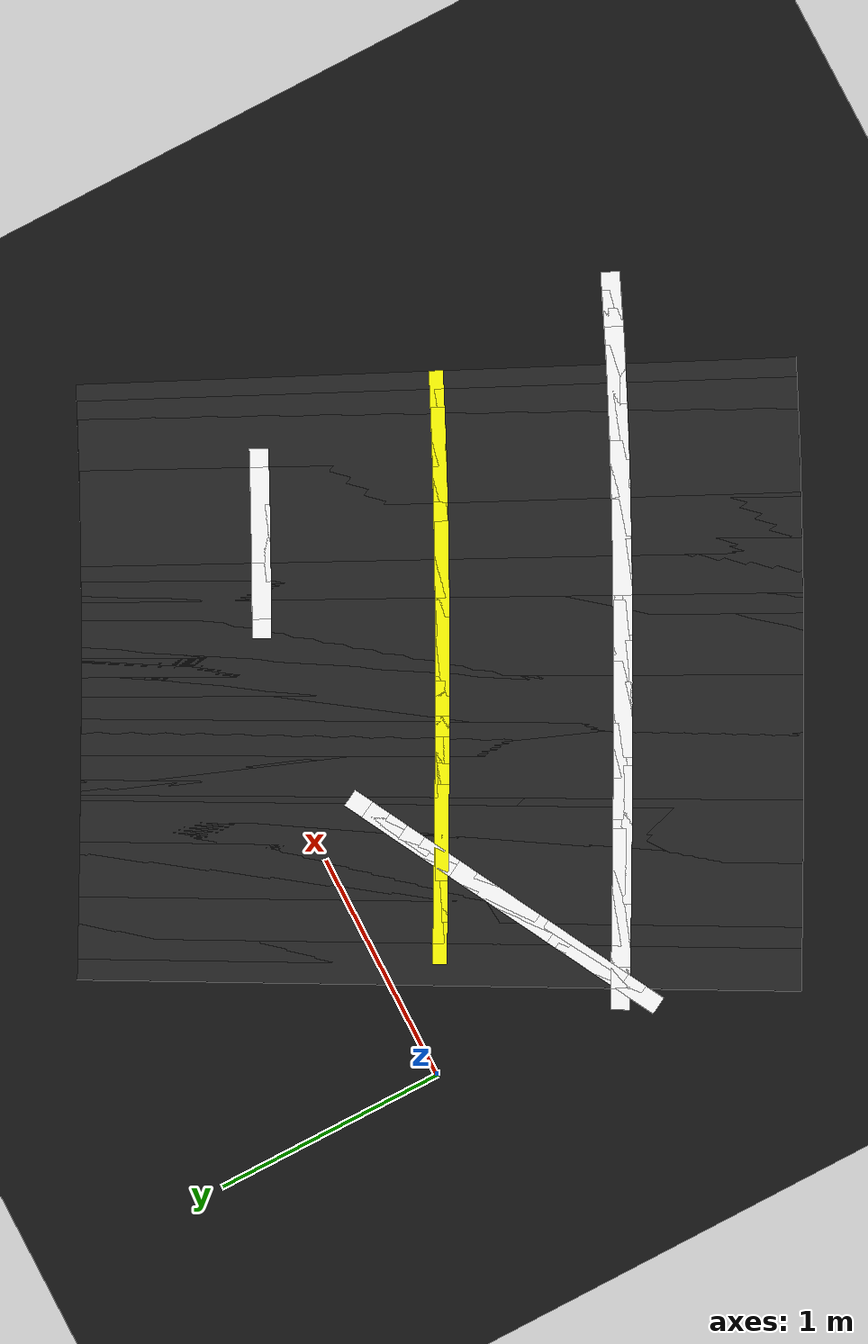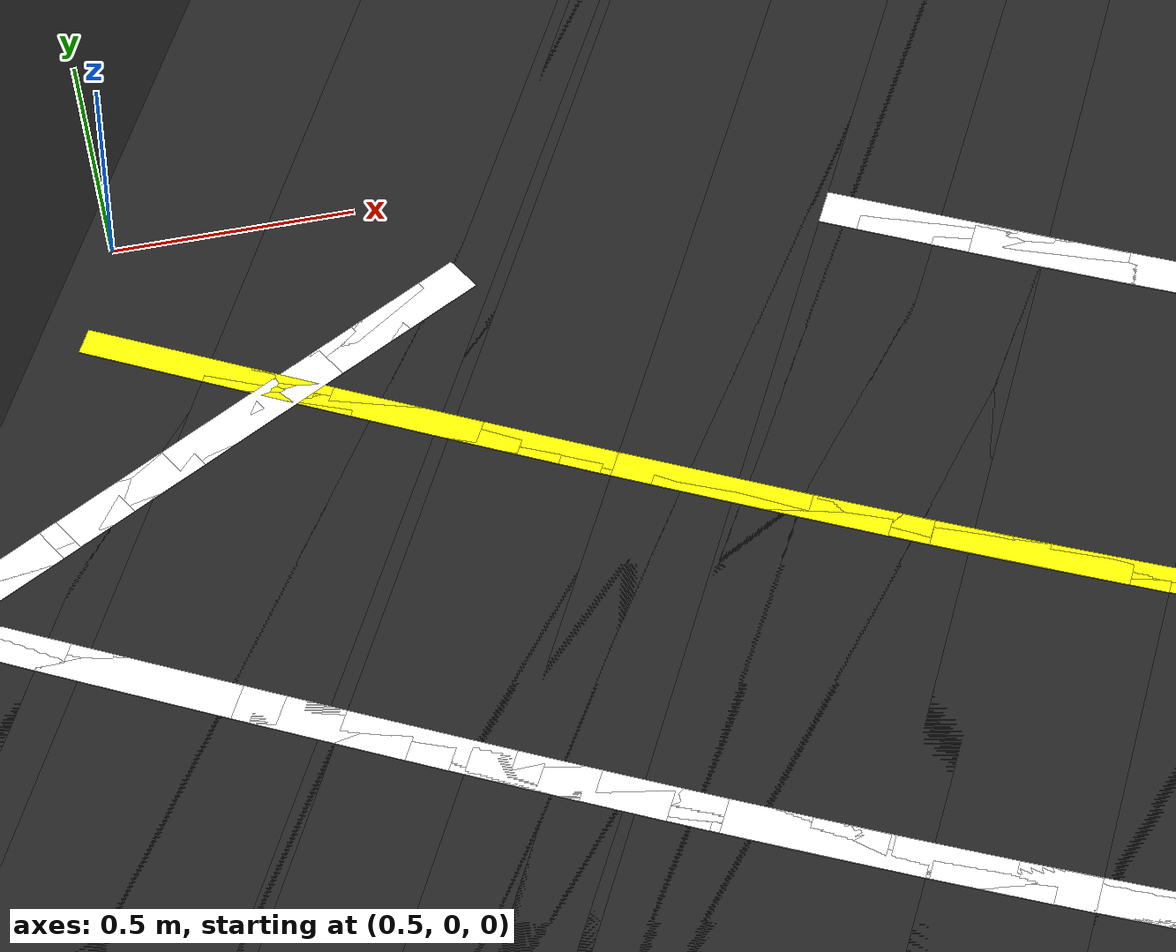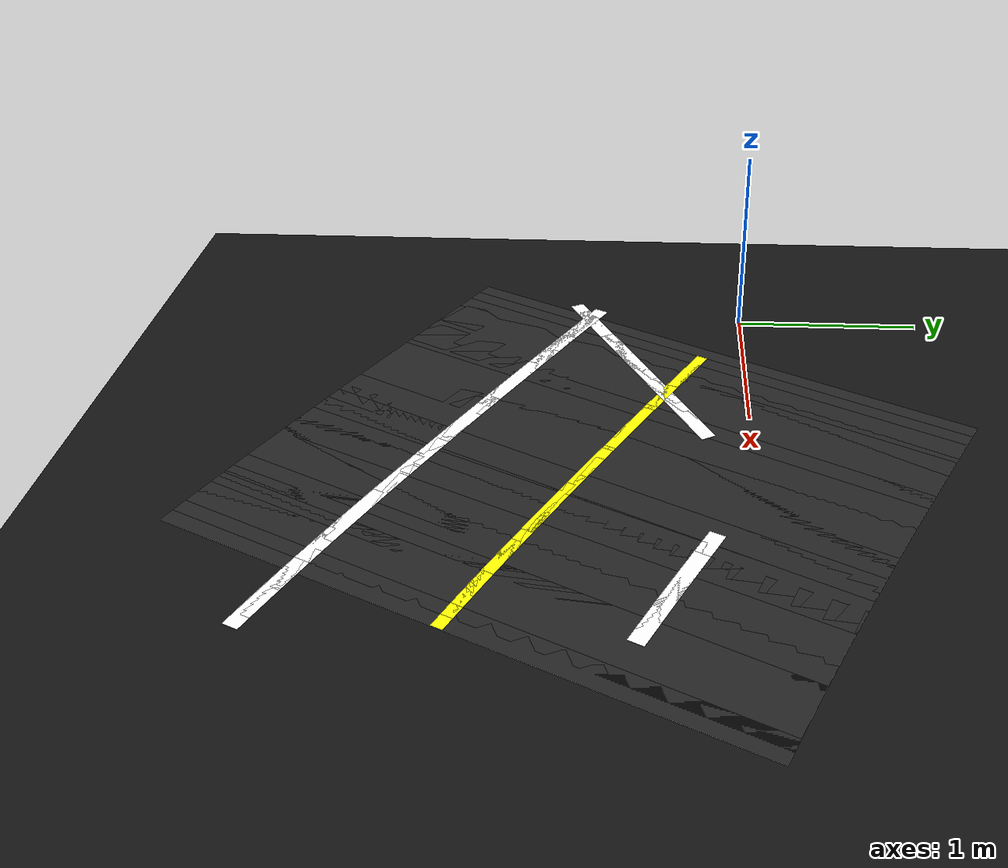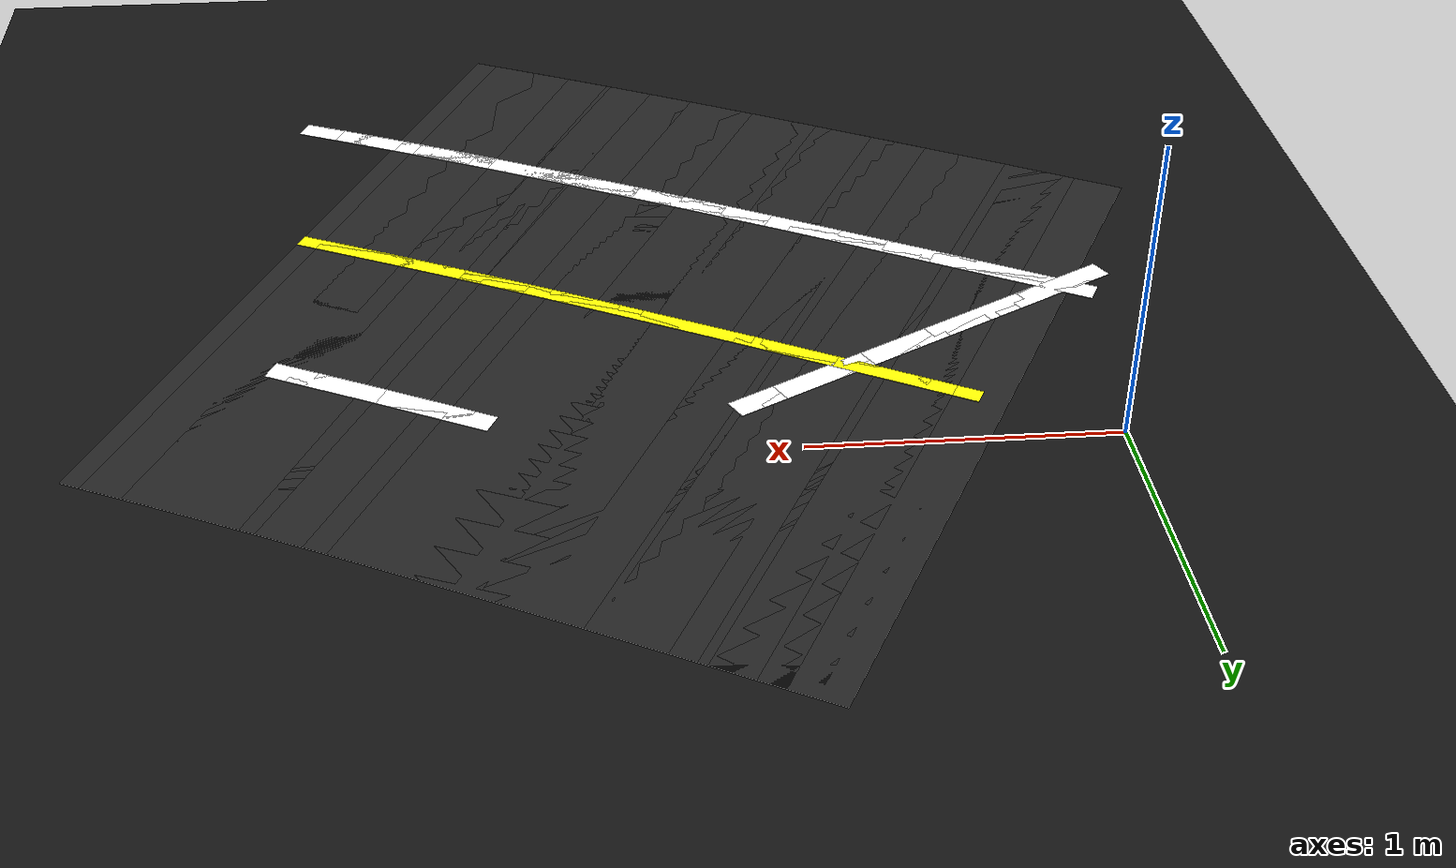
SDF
<sdf version="1.6">
 <world name="figure8_world">
  <model name="ground_plane">
   <static>true</static>
   <link name="link">
    <collision name="collision">
     <geometry><plane><normal>0 0 1</normal><size>120 120</size></plane></geometry>
    </collision>
    <visual name="visual">
     <geometry><plane><normal>0 0 1</normal><size>120 120</size></plane></geometry>
     <material><ambient>0.08 0.08 0.08 1</ambient><diffuse>0.08 0.08 0.08 1</diffuse></material>
    </visual>
   </link>
  </model>
  <model name="seg_01710">
   <static>true</static>
   <pose>0.0686 -0.8906 0.0030 0 0 -0.4966</pose>
   <link name="link">
    <collision name="collision"><geometry><box><size>0.4000 0.0800 0.002</size></box></geometry></collision>
    <visual name="visual">
     <geometry><box><size>0.4000 0.0800 0.002</size></box></geometry>
     <material><ambient>1 1 1 1</ambient><diffuse>1 1 1 1</diffuse></material>
    </visual>
   </link>
  </model>
  <model name="seg_01712">
   <static>true</static>
   <pose>0.5032 -0.2730 0.0010 0 0 -0.4961</pose>
   <link name="link">
    <collision name="collision"><geometry><box><size>0.4000 3.0000 0.002</size></box></geometry></collision>
    <visual name="visual">
     <geometry><box><size>0.4000 3.0000 0.002</size></box></geometry>
     <material><ambient>0.14 0.14 0.14 1</ambient><diffuse>0.14 0.14 0.14 1</diffuse></material>
    </visual>
   </link>
  </model>
  <model name="seg_01714">
   <static>true</static>
   <pose>0.1461 -0.9326 0.0030 0 0 -0.4961</pose>
   <link name="link">
    <collision name="collision"><geometry><box><size>0.4000 0.0800 0.002</size></box></geometry></collision>
    <visual name="visual">
     <geometry><box><size>0.4000 0.0800 0.002</size></box></geometry>
     <material><ambient>1 1 1 1</ambient><diffuse>1 1 1 1</diffuse></material>
    </visual>
   </link>
  </model>
  <model name="seg_01716">
   <static>true</static>
   <pose>0.5803 -0.3147 0.0010 0 0 -0.4955</pose>
   <link name="link">
    <collision name="collision"><geometry><box><size>0.4000 3.0000 0.002</size></box></geometry></collision>
    <visual name="visual">
     <geometry><box><size>0.4000 3.0000 0.002</size></box></geometry>
     <material><ambient>0.14 0.14 0.14 1</ambient><diffuse>0.14 0.14 0.14 1</diffuse></material>
    </visual>
   </link>
  </model>
  <model name="seg_01718">
   <static>true</static>
   <pose>0.2237 -0.9745 0.0030 0 0 -0.4955</pose>
   <link name="link">
    <collision name="collision"><geometry><box><size>0.4000 0.0800 0.002</size></box></geometry></collision>
    <visual name="visual">
     <geometry><box><size>0.4000 0.0800 0.002</size></box></geometry>
     <material><ambient>1 1 1 1</ambient><diffuse>1 1 1 1</diffuse></material>
    </visual>
   </link>
  </model>
  <model name="seg_01719">
   <static>true</static>
   <pose>0.5803 -0.3147 0.0030 0 0 -0.4955</pose>
   <link name="link">
    <collision name="collision"><geometry><box><size>0.4000 0.0600 0.002</size></box></geometry></collision>
    <visual name="visual">
     <geometry><box><size>0.4000 0.0600 0.002</size></box></geometry>
     <material><ambient>1 1 0 1</ambient><diffuse>1 1 0 1</diffuse></material>
    </visual>
   </link>
  </model>
  <model name="seg_01720">
   <static>true</static>
   <pose>0.6572 -0.3562 0.0010 0 0 -0.4948</pose>
   <link name="link">
    <collision name="collision"><geometry><box><size>0.4000 3.0000 0.002</size></box></geometry></collision>
    <visual name="visual">
     <geometry><box><size>0.4000 3.0000 0.002</size></box></geometry>
     <material><ambient>0.14 0.14 0.14 1</ambient><diffuse>0.14 0.14 0.14 1</diffuse></material>
    </visual>
   </link>
  </model>
  <model name="seg_01722">
   <static>true</static>
   <pose>0.3011 -1.0163 0.0030 0 0 -0.4948</pose>
   <link name="link">
    <collision name="collision"><geometry><box><size>0.4000 0.0800 0.002</size></box></geometry></collision>
    <visual name="visual">
     <geometry><box><size>0.4000 0.0800 0.002</size></box></geometry>
     <material><ambient>1 1 1 1</ambient><diffuse>1 1 1 1</diffuse></material>
    </visual>
   </link>
  </model>
  <model name="seg_01723">
   <static>true</static>
   <pose>0.6572 -0.3562 0.0030 0 0 -0.4948</pose>
   <link name="link">
    <collision name="collision"><geometry><box><size>0.4000 0.0600 0.002</size></box></geometry></collision>
    <visual name="visual">
     <geometry><box><size>0.4000 0.0600 0.002</size></box></geometry>
     <material><ambient>1 1 0 1</ambient><diffuse>1 1 0 1</diffuse></material>
    </visual>
   </link>
  </model>
  <model name="seg_01724">
   <static>true</static>
   <pose>0.7341 -0.3976 0.0010 0 0 -0.4940</pose>
   <link name="link">
    <collision name="collision"><geometry><box><size>0.4000 3.0000 0.002</size></box></geometry></collision>
    <visual name="visual">
     <geometry><box><size>0.4000 3.0000 0.002</size></box></geometry>
     <material><ambient>0.14 0.14 0.14 1</ambient><diffuse>0.14 0.14 0.14 1</diffuse></material>
    </visual>
   </link>
  </model>
  <model name="seg_01726">
   <static>true</static>
   <pose>0.3785 -1.0580 0.0030 0 0 -0.4940</pose>
   <link name="link">
    <collision name="collision"><geometry><box><size>0.4000 0.0800 0.002</size></box></geometry></collision>
    <visual name="visual">
     <geometry><box><size>0.4000 0.0800 0.002</size></box></geometry>
     <material><ambient>1 1 1 1</ambient><diffuse>1 1 1 1</diffuse></material>
    </visual>
   </link>
  </model>
  <model name="seg_01727">
   <static>true</static>
   <pose>0.7341 -0.3976 0.0030 0 0 -0.4940</pose>
   <link name="link">
    <collision name="collision"><geometry><box><size>0.4000 0.0600 0.002</size></box></geometry></collision>
    <visual name="visual">
     <geometry><box><size>0.4000 0.0600 0.002</size></box></geometry>
     <material><ambient>1 1 0 1</ambient><diffuse>1 1 0 1</diffuse></material>
    </visual>
   </link>
  </model>
  <model name="seg_01728">
   <static>true</static>
   <pose>0.8108 -0.4388 0.0010 0 0 -0.4930</pose>
   <link name="link">
    <collision name="collision"><geometry><box><size>0.4000 3.0000 0.002</size></box></geometry></collision>
    <visual name="visual">
     <geometry><box><size>0.4000 3.0000 0.002</size></box></geometry>
     <material><ambient>0.14 0.14 0.14 1</ambient><diffuse>0.14 0.14 0.14 1</diffuse></material>
    </visual>
   </link>
  </model>
  <model name="seg_01730">
   <static>true</static>
   <pose>0.4558 -1.0995 0.0030 0 0 -0.4930</pose>
   <link name="link">
    <collision name="collision"><geometry><box><size>0.4000 0.0800 0.002</size></box></geometry></collision>
    <visual name="visual">
     <geometry><box><size>0.4000 0.0800 0.002</size></box></geometry>
     <material><ambient>1 1 1 1</ambient><diffuse>1 1 1 1</diffuse></material>
    </visual>
   </link>
  </model>
  <model name="seg_01731">
   <static>true</static>
   <pose>0.8108 -0.4388 0.0030 0 0 -0.4930</pose>
   <link name="link">
    <collision name="collision"><geometry><box><size>0.4000 0.0600 0.002</size></box></geometry></collision>
    <visual name="visual">
     <geometry><box><size>0.4000 0.0600 0.002</size></box></geometry>
     <material><ambient>1 1 0 1</ambient><diffuse>1 1 0 1</diffuse></material>
    </visual>
   </link>
  </model>
  <model name="seg_01732">
   <static>true</static>
   <pose>0.8873 -0.4798 0.0010 0 0 -0.4920</pose>
   <link name="link">
    <collision name="collision"><geometry><box><size>0.4000 3.0000 0.002</size></box></geometry></collision>
    <visual name="visual">
     <geometry><box><size>0.4000 3.0000 0.002</size></box></geometry>
     <material><ambient>0.14 0.14 0.14 1</ambient><diffuse>0.14 0.14 0.14 1</diffuse></material>
    </visual>
   </link>
  </model>
  <model name="seg_01734">
   <static>true</static>
   <pose>0.5330 -1.1408 0.0030 0 0 -0.4920</pose>
   <link name="link">
    <collision name="collision"><geometry><box><size>0.4000 0.0800 0.002</size></box></geometry></collision>
    <visual name="visual">
     <geometry><box><size>0.4000 0.0800 0.002</size></box></geometry>
     <material><ambient>1 1 1 1</ambient><diffuse>1 1 1 1</diffuse></material>
    </visual>
   </link>
  </model>
  <model name="seg_01735">
   <static>true</static>
   <pose>0.8873 -0.4798 0.0030 0 0 -0.4920</pose>
   <link name="link">
    <collision name="collision"><geometry><box><size>0.4000 0.0600 0.002</size></box></geometry></collision>
    <visual name="visual">
     <geometry><box><size>0.4000 0.0600 0.002</size></box></geometry>
     <material><ambient>1 1 0 1</ambient><diffuse>1 1 0 1</diffuse></material>
    </visual>
   </link>
  </model>
  <model name="seg_01736">
   <static>true</static>
   <pose>0.9636 -0.5206 0.0010 0 0 -0.4909</pose>
   <link name="link">
    <collision name="collision"><geometry><box><size>0.4000 3.0000 0.002</size></box></geometry></collision>
    <visual name="visual">
     <geometry><box><size>0.4000 3.0000 0.002</size></box></geometry>
     <material><ambient>0.14 0.14 0.14 1</ambient><diffuse>0.14 0.14 0.14 1</diffuse></material>
    </visual>
   </link>
  </model>
  <model name="seg_01738">
   <static>true</static>
   <pose>0.6100 -1.1820 0.0030 0 0 -0.4909</pose>
   <link name="link">
    <collision name="collision"><geometry><box><size>0.4000 0.0800 0.002</size></box></geometry></collision>
    <visual name="visual">
     <geometry><box><size>0.4000 0.0800 0.002</size></box></geometry>
     <material><ambient>1 1 1 1</ambient><diffuse>1 1 1 1</diffuse></material>
    </visual>
   </link>
  </model>
  <model name="seg_01739">
   <static>true</static>
   <pose>0.9636 -0.5206 0.0030 0 0 -0.4909</pose>
   <link name="link">
    <collision name="collision"><geometry><box><size>0.4000 0.0600 0.002</size></box></geometry></collision>
    <visual name="visual">
     <geometry><box><size>0.4000 0.0600 0.002</size></box></geometry>
     <material><ambient>1 1 0 1</ambient><diffuse>1 1 0 1</diffuse></material>
    </visual>
   </link>
  </model>
  <model name="seg_01740">
   <static>true</static>
   <pose>1.0396 -0.5611 0.0010 0 0 -0.4897</pose>
   <link name="link">
    <collision name="collision"><geometry><box><size>0.4000 3.0000 0.002</size></box></geometry></collision>
    <visual name="visual">
     <geometry><box><size>0.4000 3.0000 0.002</size></box></geometry>
     <material><ambient>0.14 0.14 0.14 1</ambient><diffuse>0.14 0.14 0.14 1</diffuse></material>
    </visual>
   </link>
  </model>
  <model name="seg_01742">
   <static>true</static>
   <pose>0.6869 -1.2230 0.0030 0 0 -0.4897</pose>
   <link name="link">
    <collision name="collision"><geometry><box><size>0.4000 0.0800 0.002</size></box></geometry></collision>
    <visual name="visual">
     <geometry><box><size>0.4000 0.0800 0.002</size></box></geometry>
     <material><ambient>1 1 1 1</ambient><diffuse>1 1 1 1</diffuse></material>
    </visual>
   </link>
  </model>
  <model name="seg_01743">
   <static>true</static>
   <pose>1.0396 -0.5611 0.0030 0 0 -0.4897</pose>
   <link name="link">
    <collision name="collision"><geometry><box><size>0.4000 0.0600 0.002</size></box></geometry></collision>
    <visual name="visual">
     <geometry><box><size>0.4000 0.0600 0.002</size></box></geometry>
     <material><ambient>1 1 0 1</ambient><diffuse>1 1 0 1</diffuse></material>
    </visual>
   </link>
  </model>
  <model name="seg_01744">
   <static>true</static>
   <pose>1.1155 -0.6014 0.0010 0 0 -0.4883</pose>
   <link name="link">
    <collision name="collision"><geometry><box><size>0.4000 3.0000 0.002</size></box></geometry></collision>
    <visual name="visual">
     <geometry><box><size>0.4000 3.0000 0.002</size></box></geometry>
     <material><ambient>0.14 0.14 0.14 1</ambient><diffuse>0.14 0.14 0.14 1</diffuse></material>
    </visual>
   </link>
  </model>
  <model name="seg_01746">
   <static>true</static>
   <pose>0.7636 -1.2638 0.0030 0 0 -0.4883</pose>
   <link name="link">
    <collision name="collision"><geometry><box><size>0.4000 0.0800 0.002</size></box></geometry></collision>
    <visual name="visual">
     <geometry><box><size>0.4000 0.0800 0.002</size></box></geometry>
     <material><ambient>1 1 1 1</ambient><diffuse>1 1 1 1</diffuse></material>
    </visual>
   </link>
  </model>
  <model name="seg_01747">
   <static>true</static>
   <pose>1.1155 -0.6014 0.0030 0 0 -0.4883</pose>
   <link name="link">
    <collision name="collision"><geometry><box><size>0.4000 0.0600 0.002</size></box></geometry></collision>
    <visual name="visual">
     <geometry><box><size>0.4000 0.0600 0.002</size></box></geometry>
     <material><ambient>1 1 0 1</ambient><diffuse>1 1 0 1</diffuse></material>
    </visual>
   </link>
  </model>
  <model name="seg_01748">
   <static>true</static>
   <pose>1.1911 -0.6415 0.0010 0 0 -0.4869</pose>
   <link name="link">
    <collision name="collision"><geometry><box><size>0.4000 3.0000 0.002</size></box></geometry></collision>
    <visual name="visual">
     <geometry><box><size>0.4000 3.0000 0.002</size></box></geometry>
     <material><ambient>0.14 0.14 0.14 1</ambient><diffuse>0.14 0.14 0.14 1</diffuse></material>
    </visual>
   </link>
  </model>
  <model name="seg_01750">
   <static>true</static>
   <pose>0.8402 -1.3043 0.0030 0 0 -0.4869</pose>
   <link name="link">
    <collision name="collision"><geometry><box><size>0.4000 0.0800 0.002</size></box></geometry></collision>
    <visual name="visual">
     <geometry><box><size>0.4000 0.0800 0.002</size></box></geometry>
     <material><ambient>1 1 1 1</ambient><diffuse>1 1 1 1</diffuse></material>
    </visual>
   </link>
  </model>
  <model name="seg_01751">
   <static>true</static>
   <pose>1.1911 -0.6415 0.0030 0 0 -0.4869</pose>
   <link name="link">
    <collision name="collision"><geometry><box><size>0.4000 0.0600 0.002</size></box></geometry></collision>
    <visual name="visual">
     <geometry><box><size>0.4000 0.0600 0.002</size></box></geometry>
     <material><ambient>1 1 0 1</ambient><diffuse>1 1 0 1</diffuse></material>
    </visual>
   </link>
  </model>
  <model name="seg_01752">
   <static>true</static>
   <pose>1.2665 -0.6812 0.0010 0 0 -0.4853</pose>
   <link name="link">
    <collision name="collision"><geometry><box><size>0.4000 3.0000 0.002</size></box></geometry></collision>
    <visual name="visual">
     <geometry><box><size>0.4000 3.0000 0.002</size></box></geometry>
     <material><ambient>0.14 0.14 0.14 1</ambient><diffuse>0.14 0.14 0.14 1</diffuse></material>
    </visual>
   </link>
  </model>
  <model name="seg_01754">
   <static>true</static>
   <pose>0.9166 -1.3446 0.0030 0 0 -0.4853</pose>
   <link name="link">
    <collision name="collision"><geometry><box><size>0.4000 0.0800 0.002</size></box></geometry></collision>
    <visual name="visual">
     <geometry><box><size>0.4000 0.0800 0.002</size></box></geometry>
     <material><ambient>1 1 1 1</ambient><diffuse>1 1 1 1</diffuse></material>
    </visual>
   </link>
  </model>
  <model name="seg_01755">
   <static>true</static>
   <pose>1.2665 -0.6812 0.0030 0 0 -0.4853</pose>
   <link name="link">
    <collision name="collision"><geometry><box><size>0.4000 0.0600 0.002</size></box></geometry></collision>
    <visual name="visual">
     <geometry><box><size>0.4000 0.0600 0.002</size></box></geometry>
     <material><ambient>1 1 0 1</ambient><diffuse>1 1 0 1</diffuse></material>
    </visual>
   </link>
  </model>
  <model name="seg_01756">
   <static>true</static>
   <pose>1.3415 -0.7206 0.0010 0 0 -0.4836</pose>
   <link name="link">
    <collision name="collision"><geometry><box><size>0.4000 3.0000 0.002</size></box></geometry></collision>
    <visual name="visual">
     <geometry><box><size>0.4000 3.0000 0.002</size></box></geometry>
     <material><ambient>0.14 0.14 0.14 1</ambient><diffuse>0.14 0.14 0.14 1</diffuse></material>
    </visual>
   </link>
  </model>
  <model name="seg_01758">
   <static>true</static>
   <pose>0.9928 -1.3846 0.0030 0 0 -0.4836</pose>
   <link name="link">
    <collision name="collision"><geometry><box><size>0.4000 0.0800 0.002</size></box></geometry></collision>
    <visual name="visual">
     <geometry><box><size>0.4000 0.0800 0.002</size></box></geometry>
     <material><ambient>1 1 1 1</ambient><diffuse>1 1 1 1</diffuse></material>
    </visual>
   </link>
  </model>
  <model name="seg_01759">
   <static>true</static>
   <pose>1.3415 -0.7206 0.0030 0 0 -0.4836</pose>
   <link name="link">
    <collision name="collision"><geometry><box><size>0.4000 0.0600 0.002</size></box></geometry></collision>
    <visual name="visual">
     <geometry><box><size>0.4000 0.0600 0.002</size></box></geometry>
     <material><ambient>1 1 0 1</ambient><diffuse>1 1 0 1</diffuse></material>
    </visual>
   </link>
  </model>
  <model name="seg_01760">
   <static>true</static>
   <pose>1.4163 -0.7597 0.0010 0 0 -0.4818</pose>
   <link name="link">
    <collision name="collision"><geometry><box><size>0.4000 3.0000 0.002</size></box></geometry></collision>
    <visual name="visual">
     <geometry><box><size>0.4000 3.0000 0.002</size></box></geometry>
     <material><ambient>0.14 0.14 0.14 1</ambient><diffuse>0.14 0.14 0.14 1</diffuse></material>
    </visual>
   </link>
  </model>
  <model name="seg_01762">
   <static>true</static>
   <pose>1.0688 -1.4243 0.0030 0 0 -0.4818</pose>
   <link name="link">
    <collision name="collision"><geometry><box><size>0.4000 0.0800 0.002</size></box></geometry></collision>
    <visual name="visual">
     <geometry><box><size>0.4000 0.0800 0.002</size></box></geometry>
     <material><ambient>1 1 1 1</ambient><diffuse>1 1 1 1</diffuse></material>
    </visual>
   </link>
  </model>
  <model name="seg_01763">
   <static>true</static>
   <pose>1.4163 -0.7597 0.0030 0 0 -0.4818</pose>
   <link name="link">
    <collision name="collision"><geometry><box><size>0.4000 0.0600 0.002</size></box></geometry></collision>
    <visual name="visual">
     <geometry><box><size>0.4000 0.0600 0.002</size></box></geometry>
     <material><ambient>1 1 0 1</ambient><diffuse>1 1 0 1</diffuse></material>
    </visual>
   </link>
  </model>
  <model name="seg_01764">
   <static>true</static>
   <pose>1.4908 -0.7985 0.0010 0 0 -0.4799</pose>
   <link name="link">
    <collision name="collision"><geometry><box><size>0.4000 3.0000 0.002</size></box></geometry></collision>
    <visual name="visual">
     <geometry><box><size>0.4000 3.0000 0.002</size></box></geometry>
     <material><ambient>0.14 0.14 0.14 1</ambient><diffuse>0.14 0.14 0.14 1</diffuse></material>
    </visual>
   </link>
  </model>
  <model name="seg_01766">
   <static>true</static>
   <pose>1.1445 -1.4638 0.0030 0 0 -0.4799</pose>
   <link name="link">
    <collision name="collision"><geometry><box><size>0.4000 0.0800 0.002</size></box></geometry></collision>
    <visual name="visual">
     <geometry><box><size>0.4000 0.0800 0.002</size></box></geometry>
     <material><ambient>1 1 1 1</ambient><diffuse>1 1 1 1</diffuse></material>
    </visual>
   </link>
  </model>
  <model name="seg_01767">
   <static>true</static>
   <pose>1.4908 -0.7985 0.0030 0 0 -0.4799</pose>
   <link name="link">
    <collision name="collision"><geometry><box><size>0.4000 0.0600 0.002</size></box></geometry></collision>
    <visual name="visual">
     <geometry><box><size>0.4000 0.0600 0.002</size></box></geometry>
     <material><ambient>1 1 0 1</ambient><diffuse>1 1 0 1</diffuse></material>
    </visual>
   </link>
  </model>
  <model name="seg_01768">
   <static>true</static>
   <pose>1.5649 -0.8369 0.0010 0 0 -0.4779</pose>
   <link name="link">
    <collision name="collision"><geometry><box><size>0.4000 3.0000 0.002</size></box></geometry></collision>
    <visual name="visual">
     <geometry><box><size>0.4000 3.0000 0.002</size></box></geometry>
     <material><ambient>0.14 0.14 0.14 1</ambient><diffuse>0.14 0.14 0.14 1</diffuse></material>
    </visual>
   </link>
  </model>
  <model name="seg_01770">
   <static>true</static>
   <pose>1.2200 -1.5029 0.0030 0 0 -0.4779</pose>
   <link name="link">
    <collision name="collision"><geometry><box><size>0.4000 0.0800 0.002</size></box></geometry></collision>
    <visual name="visual">
     <geometry><box><size>0.4000 0.0800 0.002</size></box></geometry>
     <material><ambient>1 1 1 1</ambient><diffuse>1 1 1 1</diffuse></material>
    </visual>
   </link>
  </model>
  <model name="seg_01771">
   <static>true</static>
   <pose>1.5649 -0.8369 0.0030 0 0 -0.4779</pose>
   <link name="link">
    <collision name="collision"><geometry><box><size>0.4000 0.0600 0.002</size></box></geometry></collision>
    <visual name="visual">
     <geometry><box><size>0.4000 0.0600 0.002</size></box></geometry>
     <material><ambient>1 1 0 1</ambient><diffuse>1 1 0 1</diffuse></material>
    </visual>
   </link>
  </model>
  <model name="seg_01772">
   <static>true</static>
   <pose>1.6387 -0.8749 0.0010 0 0 -0.4757</pose>
   <link name="link">
    <collision name="collision"><geometry><box><size>0.4000 3.0000 0.002</size></box></geometry></collision>
    <visual name="visual">
     <geometry><box><size>0.4000 3.0000 0.002</size></box></geometry>
     <material><ambient>0.14 0.14 0.14 1</ambient><diffuse>0.14 0.14 0.14 1</diffuse></material>
    </visual>
   </link>
  </model>
  <model name="seg_01774">
   <static>true</static>
   <pose>1.2952 -1.5416 0.0030 0 0 -0.4757</pose>
   <link name="link">
    <collision name="collision"><geometry><box><size>0.4000 0.0800 0.002</size></box></geometry></collision>
    <visual name="visual">
     <geometry><box><size>0.4000 0.0800 0.002</size></box></geometry>
     <material><ambient>1 1 1 1</ambient><diffuse>1 1 1 1</diffuse></material>
    </visual>
   </link>
  </model>
  <model name="seg_01775">
   <static>true</static>
   <pose>1.6387 -0.8749 0.0030 0 0 -0.4757</pose>
   <link name="link">
    <collision name="collision"><geometry><box><size>0.4000 0.0600 0.002</size></box></geometry></collision>
    <visual name="visual">
     <geometry><box><size>0.4000 0.0600 0.002</size></box></geometry>
     <material><ambient>1 1 0 1</ambient><diffuse>1 1 0 1</diffuse></material>
    </visual>
   </link>
  </model>
  <model name="seg_01776">
   <static>true</static>
   <pose>1.7121 -0.9125 0.0010 0 0 -0.4734</pose>
   <link name="link">
    <collision name="collision"><geometry><box><size>0.4000 3.0000 0.002</size></box></geometry></collision>
    <visual name="visual">
     <geometry><box><size>0.4000 3.0000 0.002</size></box></geometry>
     <material><ambient>0.14 0.14 0.14 1</ambient><diffuse>0.14 0.14 0.14 1</diffuse></material>
    </visual>
   </link>
  </model>
  <model name="seg_01778">
   <static>true</static>
   <pose>1.3701 -1.5800 0.0030 0 0 -0.4734</pose>
   <link name="link">
    <collision name="collision"><geometry><box><size>0.4000 0.0800 0.002</size></box></geometry></collision>
    <visual name="visual">
     <geometry><box><size>0.4000 0.0800 0.002</size></box></geometry>
     <material><ambient>1 1 1 1</ambient><diffuse>1 1 1 1</diffuse></material>
    </visual>
   </link>
  </model>
  <model name="seg_01779">
   <static>true</static>
   <pose>1.7121 -0.9125 0.0030 0 0 -0.4734</pose>
   <link name="link">
    <collision name="collision"><geometry><box><size>0.4000 0.0600 0.002</size></box></geometry></collision>
    <visual name="visual">
     <geometry><box><size>0.4000 0.0600 0.002</size></box></geometry>
     <material><ambient>1 1 0 1</ambient><diffuse>1 1 0 1</diffuse></material>
    </visual>
   </link>
  </model>
  <model name="seg_01780">
   <static>true</static>
   <pose>1.7851 -0.9497 0.0010 0 0 -0.4709</pose>
   <link name="link">
    <collision name="collision"><geometry><box><size>0.4000 3.0000 0.002</size></box></geometry></collision>
    <visual name="visual">
     <geometry><box><size>0.4000 3.0000 0.002</size></box></geometry>
     <material><ambient>0.14 0.14 0.14 1</ambient><diffuse>0.14 0.14 0.14 1</diffuse></material>
    </visual>
   </link>
  </model>
  <model name="seg_01781">
   <static>true</static>
   <pose>2.1254 -0.2813 0.0030 0 0 -0.4709</pose>
   <link name="link">
    <collision name="collision"><geometry><box><size>0.4000 0.0800 0.002</size></box></geometry></collision>
    <visual name="visual">
     <geometry><box><size>0.4000 0.0800 0.002</size></box></geometry>
     <material><ambient>1 1 1 1</ambient><diffuse>1 1 1 1</diffuse></material>
    </visual>
   </link>
  </model>
  <model name="seg_01782">
   <static>true</static>
   <pose>1.4448 -1.6180 0.0030 0 0 -0.4709</pose>
   <link name="link">
    <collision name="collision"><geometry><box><size>0.4000 0.0800 0.002</size></box></geometry></collision>
    <visual name="visual">
     <geometry><box><size>0.4000 0.0800 0.002</size></box></geometry>
     <material><ambient>1 1 1 1</ambient><diffuse>1 1 1 1</diffuse></material>
    </visual>
   </link>
  </model>
  <model name="seg_01783">
   <static>true</static>
   <pose>1.7851 -0.9497 0.0030 0 0 -0.4709</pose>
   <link name="link">
    <collision name="collision"><geometry><box><size>0.4000 0.0600 0.002</size></box></geometry></collision>
    <visual name="visual">
     <geometry><box><size>0.4000 0.0600 0.002</size></box></geometry>
     <material><ambient>1 1 0 1</ambient><diffuse>1 1 0 1</diffuse></material>
    </visual>
   </link>
  </model>
  <model name="seg_01784">
   <static>true</static>
   <pose>1.8577 -0.9864 0.0010 0 0 -0.4684</pose>
   <link name="link">
    <collision name="collision"><geometry><box><size>0.4000 3.0000 0.002</size></box></geometry></collision>
    <visual name="visual">
     <geometry><box><size>0.4000 3.0000 0.002</size></box></geometry>
     <material><ambient>0.14 0.14 0.14 1</ambient><diffuse>0.14 0.14 0.14 1</diffuse></material>
    </visual>
   </link>
  </model>
  <model name="seg_01785">
   <static>true</static>
   <pose>2.1963 -0.3172 0.0030 0 0 -0.4684</pose>
   <link name="link">
    <collision name="collision"><geometry><box><size>0.4000 0.0800 0.002</size></box></geometry></collision>
    <visual name="visual">
     <geometry><box><size>0.4000 0.0800 0.002</size></box></geometry>
     <material><ambient>1 1 1 1</ambient><diffuse>1 1 1 1</diffuse></material>
    </visual>
   </link>
  </model>
  <model name="seg_01786">
   <static>true</static>
   <pose>1.5191 -1.6556 0.0030 0 0 -0.4684</pose>
   <link name="link">
    <collision name="collision"><geometry><box><size>0.4000 0.0800 0.002</size></box></geometry></collision>
    <visual name="visual">
     <geometry><box><size>0.4000 0.0800 0.002</size></box></geometry>
     <material><ambient>1 1 1 1</ambient><diffuse>1 1 1 1</diffuse></material>
    </visual>
   </link>
  </model>
  <model name="seg_01787">
   <static>true</static>
   <pose>1.8577 -0.9864 0.0030 0 0 -0.4684</pose>
   <link name="link">
    <collision name="collision"><geometry><box><size>0.4000 0.0600 0.002</size></box></geometry></collision>
    <visual name="visual">
     <geometry><box><size>0.4000 0.0600 0.002</size></box></geometry>
     <material><ambient>1 1 0 1</ambient><diffuse>1 1 0 1</diffuse></material>
    </visual>
   </link>
  </model>
  <model name="seg_01788">
   <static>true</static>
   <pose>1.9299 -1.0227 0.0010 0 0 -0.4656</pose>
   <link name="link">
    <collision name="collision"><geometry><box><size>0.4000 3.0000 0.002</size></box></geometry></collision>
    <visual name="visual">
     <geometry><box><size>0.4000 3.0000 0.002</size></box></geometry>
     <material><ambient>0.14 0.14 0.14 1</ambient><diffuse>0.14 0.14 0.14 1</diffuse></material>
    </visual>
   </link>
  </model>
  <model name="seg_01789">
   <static>true</static>
   <pose>2.2667 -0.3525 0.0030 0 0 -0.4656</pose>
   <link name="link">
    <collision name="collision"><geometry><box><size>0.4000 0.0800 0.002</size></box></geometry></collision>
    <visual name="visual">
     <geometry><box><size>0.4000 0.0800 0.002</size></box></geometry>
     <material><ambient>1 1 1 1</ambient><diffuse>1 1 1 1</diffuse></material>
    </visual>
   </link>
  </model>
  <model name="seg_01790">
   <static>true</static>
   <pose>1.5932 -1.6928 0.0030 0 0 -0.4656</pose>
   <link name="link">
    <collision name="collision"><geometry><box><size>0.4000 0.0800 0.002</size></box></geometry></collision>
    <visual name="visual">
     <geometry><box><size>0.4000 0.0800 0.002</size></box></geometry>
     <material><ambient>1 1 1 1</ambient><diffuse>1 1 1 1</diffuse></material>
    </visual>
   </link>
  </model>
  <model name="seg_01791">
   <static>true</static>
   <pose>1.9299 -1.0227 0.0030 0 0 -0.4656</pose>
   <link name="link">
    <collision name="collision"><geometry><box><size>0.4000 0.0600 0.002</size></box></geometry></collision>
    <visual name="visual">
     <geometry><box><size>0.4000 0.0600 0.002</size></box></geometry>
     <material><ambient>1 1 0 1</ambient><diffuse>1 1 0 1</diffuse></material>
    </visual>
   </link>
  </model>
  <model name="seg_01792">
   <static>true</static>
   <pose>2.0017 -1.0585 0.0010 0 0 -0.4627</pose>
   <link name="link">
    <collision name="collision"><geometry><box><size>0.4000 3.0000 0.002</size></box></geometry></collision>
    <visual name="visual">
     <geometry><box><size>0.4000 3.0000 0.002</size></box></geometry>
     <material><ambient>0.14 0.14 0.14 1</ambient><diffuse>0.14 0.14 0.14 1</diffuse></material>
    </visual>
   </link>
  </model>
  <model name="seg_01793">
   <static>true</static>
   <pose>2.3365 -0.3874 0.0030 0 0 -0.4627</pose>
   <link name="link">
    <collision name="collision"><geometry><box><size>0.4000 0.0800 0.002</size></box></geometry></collision>
    <visual name="visual">
     <geometry><box><size>0.4000 0.0800 0.002</size></box></geometry>
     <material><ambient>1 1 1 1</ambient><diffuse>1 1 1 1</diffuse></material>
    </visual>
   </link>
  </model>
  <model name="seg_01794">
   <static>true</static>
   <pose>1.6669 -1.7296 0.0030 0 0 -0.4627</pose>
   <link name="link">
    <collision name="collision"><geometry><box><size>0.4000 0.0800 0.002</size></box></geometry></collision>
    <visual name="visual">
     <geometry><box><size>0.4000 0.0800 0.002</size></box></geometry>
     <material><ambient>1 1 1 1</ambient><diffuse>1 1 1 1</diffuse></material>
    </visual>
   </link>
  </model>
  <model name="seg_01795">
   <static>true</static>
   <pose>2.0017 -1.0585 0.0030 0 0 -0.4627</pose>
   <link name="link">
    <collision name="collision"><geometry><box><size>0.4000 0.0600 0.002</size></box></geometry></collision>
    <visual name="visual">
     <geometry><box><size>0.4000 0.0600 0.002</size></box></geometry>
     <material><ambient>1 1 0 1</ambient><diffuse>1 1 0 1</diffuse></material>
    </visual>
   </link>
  </model>
  <model name="seg_01796">
   <static>true</static>
   <pose>2.0730 -1.0938 0.0010 0 0 -0.4597</pose>
   <link name="link">
    <collision name="collision"><geometry><box><size>0.4000 3.0000 0.002</size></box></geometry></collision>
    <visual name="visual">
     <geometry><box><size>0.4000 3.0000 0.002</size></box></geometry>
     <material><ambient>0.14 0.14 0.14 1</ambient><diffuse>0.14 0.14 0.14 1</diffuse></material>
    </visual>
   </link>
  </model>
  <model name="seg_01797">
   <static>true</static>
   <pose>2.4058 -0.4217 0.0030 0 0 -0.4597</pose>
   <link name="link">
    <collision name="collision"><geometry><box><size>0.4000 0.0800 0.002</size></box></geometry></collision>
    <visual name="visual">
     <geometry><box><size>0.4000 0.0800 0.002</size></box></geometry>
     <material><ambient>1 1 1 1</ambient><diffuse>1 1 1 1</diffuse></material>
    </visual>
   </link>
  </model>
  <model name="seg_01798">
   <static>true</static>
   <pose>1.7403 -1.7660 0.0030 0 0 -0.4597</pose>
   <link name="link">
    <collision name="collision"><geometry><box><size>0.4000 0.0800 0.002</size></box></geometry></collision>
    <visual name="visual">
     <geometry><box><size>0.4000 0.0800 0.002</size></box></geometry>
     <material><ambient>1 1 1 1</ambient><diffuse>1 1 1 1</diffuse></material>
    </visual>
   </link>
  </model>
  <model name="seg_01799">
   <static>true</static>
   <pose>2.0730 -1.0938 0.0030 0 0 -0.4597</pose>
   <link name="link">
    <collision name="collision"><geometry><box><size>0.4000 0.0600 0.002</size></box></geometry></collision>
    <visual name="visual">
     <geometry><box><size>0.4000 0.0600 0.002</size></box></geometry>
     <material><ambient>1 1 0 1</ambient><diffuse>1 1 0 1</diffuse></material>
    </visual>
   </link>
  </model>
  <model name="seg_01800">
   <static>true</static>
   <pose>2.1439 -1.1286 0.0010 0 0 -0.4565</pose>
   <link name="link">
    <collision name="collision"><geometry><box><size>0.4000 3.0000 0.002</size></box></geometry></collision>
    <visual name="visual">
     <geometry><box><size>0.4000 3.0000 0.002</size></box></geometry>
     <material><ambient>0.14 0.14 0.14 1</ambient><diffuse>0.14 0.14 0.14 1</diffuse></material>
    </visual>
   </link>
  </model>
  <model name="seg_01801">
   <static>true</static>
   <pose>2.4745 -0.4554 0.0030 0 0 -0.4565</pose>
   <link name="link">
    <collision name="collision"><geometry><box><size>0.4000 0.0800 0.002</size></box></geometry></collision>
    <visual name="visual">
     <geometry><box><size>0.4000 0.0800 0.002</size></box></geometry>
     <material><ambient>1 1 1 1</ambient><diffuse>1 1 1 1</diffuse></material>
    </visual>
   </link>
  </model>
  <model name="seg_01802">
   <static>true</static>
   <pose>1.8133 -1.8018 0.0030 0 0 -0.4565</pose>
   <link name="link">
    <collision name="collision"><geometry><box><size>0.4000 0.0800 0.002</size></box></geometry></collision>
    <visual name="visual">
     <geometry><box><size>0.4000 0.0800 0.002</size></box></geometry>
     <material><ambient>1 1 1 1</ambient><diffuse>1 1 1 1</diffuse></material>
    </visual>
   </link>
  </model>
  <model name="seg_01803">
   <static>true</static>
   <pose>2.1439 -1.1286 0.0030 0 0 -0.4565</pose>
   <link name="link">
    <collision name="collision"><geometry><box><size>0.4000 0.0600 0.002</size></box></geometry></collision>
    <visual name="visual">
     <geometry><box><size>0.4000 0.0600 0.002</size></box></geometry>
     <material><ambient>1 1 0 1</ambient><diffuse>1 1 0 1</diffuse></material>
    </visual>
   </link>
  </model>
  <model name="seg_01804">
   <static>true</static>
   <pose>2.2142 -1.1629 0.0010 0 0 -0.4531</pose>
   <link name="link">
    <collision name="collision"><geometry><box><size>0.4000 3.0000 0.002</size></box></geometry></collision>
    <visual name="visual">
     <geometry><box><size>0.4000 3.0000 0.002</size></box></geometry>
     <material><ambient>0.14 0.14 0.14 1</ambient><diffuse>0.14 0.14 0.14 1</diffuse></material>
    </visual>
   </link>
  </model>
  <model name="seg_01806">
   <static>true</static>
   <pose>1.8859 -1.8372 0.0030 0 0 -0.4531</pose>
   <link name="link">
    <collision name="collision"><geometry><box><size>0.4000 0.0800 0.002</size></box></geometry></collision>
    <visual name="visual">
     <geometry><box><size>0.4000 0.0800 0.002</size></box></geometry>
     <material><ambient>1 1 1 1</ambient><diffuse>1 1 1 1</diffuse></material>
    </visual>
   </link>
  </model>
  <model name="seg_01807">
   <static>true</static>
   <pose>2.2142 -1.1629 0.0030 0 0 -0.4531</pose>
   <link name="link">
    <collision name="collision"><geometry><box><size>0.4000 0.0600 0.002</size></box></geometry></collision>
    <visual name="visual">
     <geometry><box><size>0.4000 0.0600 0.002</size></box></geometry>
     <material><ambient>1 1 0 1</ambient><diffuse>1 1 0 1</diffuse></material>
    </visual>
   </link>
  </model>
  <model name="seg_01808">
   <static>true</static>
   <pose>2.2841 -1.1966 0.0010 0 0 -0.4495</pose>
   <link name="link">
    <collision name="collision"><geometry><box><size>0.4000 3.0000 0.002</size></box></geometry></collision>
    <visual name="visual">
     <geometry><box><size>0.4000 3.0000 0.002</size></box></geometry>
     <material><ambient>0.14 0.14 0.14 1</ambient><diffuse>0.14 0.14 0.14 1</diffuse></material>
    </visual>
   </link>
  </model>
  <model name="seg_01810">
   <static>true</static>
   <pose>1.9582 -1.8721 0.0030 0 0 -0.4495</pose>
   <link name="link">
    <collision name="collision"><geometry><box><size>0.4000 0.0800 0.002</size></box></geometry></collision>
    <visual name="visual">
     <geometry><box><size>0.4000 0.0800 0.002</size></box></geometry>
     <material><ambient>1 1 1 1</ambient><diffuse>1 1 1 1</diffuse></material>
    </visual>
   </link>
  </model>
  <model name="seg_01811">
   <static>true</static>
   <pose>2.2841 -1.1966 0.0030 0 0 -0.4495</pose>
   <link name="link">
    <collision name="collision"><geometry><box><size>0.4000 0.0600 0.002</size></box></geometry></collision>
    <visual name="visual">
     <geometry><box><size>0.4000 0.0600 0.002</size></box></geometry>
     <material><ambient>1 1 0 1</ambient><diffuse>1 1 0 1</diffuse></material>
    </visual>
   </link>
  </model>
  <model name="seg_01812">
   <static>true</static>
   <pose>2.3535 -1.2297 0.0010 0 0 -0.4458</pose>
   <link name="link">
    <collision name="collision"><geometry><box><size>0.4000 3.0000 0.002</size></box></geometry></collision>
    <visual name="visual">
     <geometry><box><size>0.4000 3.0000 0.002</size></box></geometry>
     <material><ambient>0.14 0.14 0.14 1</ambient><diffuse>0.14 0.14 0.14 1</diffuse></material>
    </visual>
   </link>
  </model>
  <model name="seg_01814">
   <static>true</static>
   <pose>2.0301 -1.9064 0.0030 0 0 -0.4458</pose>
   <link name="link">
    <collision name="collision"><geometry><box><size>0.4000 0.0800 0.002</size></box></geometry></collision>
    <visual name="visual">
     <geometry><box><size>0.4000 0.0800 0.002</size></box></geometry>
     <material><ambient>1 1 1 1</ambient><diffuse>1 1 1 1</diffuse></material>
    </visual>
   </link>
  </model>
  <model name="seg_01815">
   <static>true</static>
   <pose>2.3535 -1.2297 0.0030 0 0 -0.4458</pose>
   <link name="link">
    <collision name="collision"><geometry><box><size>0.4000 0.0600 0.002</size></box></geometry></collision>
    <visual name="visual">
     <geometry><box><size>0.4000 0.0600 0.002</size></box></geometry>
     <material><ambient>1 1 0 1</ambient><diffuse>1 1 0 1</diffuse></material>
    </visual>
   </link>
  </model>
  <model name="seg_01816">
   <static>true</static>
   <pose>2.4223 -1.2623 0.0010 0 0 -0.4418</pose>
   <link name="link">
    <collision name="collision"><geometry><box><size>0.4000 3.0000 0.002</size></box></geometry></collision>
    <visual name="visual">
     <geometry><box><size>0.4000 3.0000 0.002</size></box></geometry>
     <material><ambient>0.14 0.14 0.14 1</ambient><diffuse>0.14 0.14 0.14 1</diffuse></material>
    </visual>
   </link>
  </model>
  <model name="seg_01818">
   <static>true</static>
   <pose>2.1016 -1.9402 0.0030 0 0 -0.4418</pose>
   <link name="link">
    <collision name="collision"><geometry><box><size>0.4000 0.0800 0.002</size></box></geometry></collision>
    <visual name="visual">
     <geometry><box><size>0.4000 0.0800 0.002</size></box></geometry>
     <material><ambient>1 1 1 1</ambient><diffuse>1 1 1 1</diffuse></material>
    </visual>
   </link>
  </model>
  <model name="seg_01819">
   <static>true</static>
   <pose>2.4223 -1.2623 0.0030 0 0 -0.4418</pose>
   <link name="link">
    <collision name="collision"><geometry><box><size>0.4000 0.0600 0.002</size></box></geometry></collision>
    <visual name="visual">
     <geometry><box><size>0.4000 0.0600 0.002</size></box></geometry>
     <material><ambient>1 1 0 1</ambient><diffuse>1 1 0 1</diffuse></material>
    </visual>
   </link>
  </model>
  <model name="seg_01822">
   <static>true</static>
   <pose>2.1727 -1.9735 0.0030 0 0 -0.4376</pose>
   <link name="link">
    <collision name="collision"><geometry><box><size>0.4000 0.0800 0.002</size></box></geometry></collision>
    <visual name="visual">
     <geometry><box><size>0.4000 0.0800 0.002</size></box></geometry>
     <material><ambient>1 1 1 1</ambient><diffuse>1 1 1 1</diffuse></material>
    </visual>
   </link>
  </model>
  <model name="seg_01826">
   <static>true</static>
   <pose>2.2433 -2.0062 0.0030 0 0 -0.4333</pose>
   <link name="link">
    <collision name="collision"><geometry><box><size>0.4000 0.0800 0.002</size></box></geometry></collision>
    <visual name="visual">
     <geometry><box><size>0.4000 0.0800 0.002</size></box></geometry>
     <material><ambient>1 1 1 1</ambient><diffuse>1 1 1 1</diffuse></material>
    </visual>
   </link>
  </model>
  <model name="seg_01830">
   <static>true</static>
   <pose>2.3136 -2.0383 0.0030 0 0 -0.4287</pose>
   <link name="link">
    <collision name="collision"><geometry><box><size>0.4000 0.0800 0.002</size></box></geometry></collision>
    <visual name="visual">
     <geometry><box><size>0.4000 0.0800 0.002</size></box></geometry>
     <material><ambient>1 1 1 1</ambient><diffuse>1 1 1 1</diffuse></material>
    </visual>
   </link>
  </model>
  <model name="seg_01834">
   <static>true</static>
   <pose>2.3834 -2.0698 0.0030 0 0 -0.4238</pose>
   <link name="link">
    <collision name="collision"><geometry><box><size>0.4000 0.0800 0.002</size></box></geometry></collision>
    <visual name="visual">
     <geometry><box><size>0.4000 0.0800 0.002</size></box></geometry>
     <material><ambient>1 1 1 1</ambient><diffuse>1 1 1 1</diffuse></material>
    </visual>
   </link>
  </model>
  <model name="seg_01838">
   <static>true</static>
   <pose>2.4528 -2.1007 0.0030 0 0 -0.4187</pose>
   <link name="link">
    <collision name="collision"><geometry><box><size>0.4000 0.0800 0.002</size></box></geometry></collision>
    <visual name="visual">
     <geometry><box><size>0.4000 0.0800 0.002</size></box></geometry>
     <material><ambient>1 1 1 1</ambient><diffuse>1 1 1 1</diffuse></material>
    </visual>
   </link>
  </model>
  <model name="seg_02026">
   <static>true</static>
   <pose>0.0087 -0.8487 0.0030 0 0 0.4966</pose>
   <link name="link">
    <collision name="collision"><geometry><box><size>0.4000 0.0800 0.002</size></box></geometry></collision>
    <visual name="visual">
     <geometry><box><size>0.4000 0.0800 0.002</size></box></geometry>
     <material><ambient>1 1 1 1</ambient><diffuse>1 1 1 1</diffuse></material>
    </visual>
   </link>
  </model>
  <model name="seg_02030">
   <static>true</static>
   <pose>0.0864 -0.8066 0.0030 0 0 0.4971</pose>
   <link name="link">
    <collision name="collision"><geometry><box><size>0.4000 0.0800 0.002</size></box></geometry></collision>
    <visual name="visual">
     <geometry><box><size>0.4000 0.0800 0.002</size></box></geometry>
     <material><ambient>1 1 1 1</ambient><diffuse>1 1 1 1</diffuse></material>
    </visual>
   </link>
  </model>
  <model name="seg_02034">
   <static>true</static>
   <pose>0.1641 -0.7644 0.0030 0 0 0.4974</pose>
   <link name="link">
    <collision name="collision"><geometry><box><size>0.4000 0.0800 0.002</size></box></geometry></collision>
    <visual name="visual">
     <geometry><box><size>0.4000 0.0800 0.002</size></box></geometry>
     <material><ambient>1 1 1 1</ambient><diffuse>1 1 1 1</diffuse></material>
    </visual>
   </link>
  </model>
  <model name="seg_02038">
   <static>true</static>
   <pose>0.2417 -0.7222 0.0030 0 0 0.4976</pose>
   <link name="link">
    <collision name="collision"><geometry><box><size>0.4000 0.0800 0.002</size></box></geometry></collision>
    <visual name="visual">
     <geometry><box><size>0.4000 0.0800 0.002</size></box></geometry>
     <material><ambient>1 1 1 1</ambient><diffuse>1 1 1 1</diffuse></material>
    </visual>
   </link>
  </model>
  <model name="seg_02042">
   <static>true</static>
   <pose>0.3193 -0.6801 0.0030 0 0 0.4978</pose>
   <link name="link">
    <collision name="collision"><geometry><box><size>0.4000 0.0800 0.002</size></box></geometry></collision>
    <visual name="visual">
     <geometry><box><size>0.4000 0.0800 0.002</size></box></geometry>
     <material><ambient>1 1 1 1</ambient><diffuse>1 1 1 1</diffuse></material>
    </visual>
   </link>
  </model>
  <model name="seg_02046">
   <static>true</static>
   <pose>0.3969 -0.6379 0.0030 0 0 0.4978</pose>
   <link name="link">
    <collision name="collision"><geometry><box><size>0.4000 0.0800 0.002</size></box></geometry></collision>
    <visual name="visual">
     <geometry><box><size>0.4000 0.0800 0.002</size></box></geometry>
     <material><ambient>1 1 1 1</ambient><diffuse>1 1 1 1</diffuse></material>
    </visual>
   </link>
  </model>
  <model name="seg_02050">
   <static>true</static>
   <pose>0.4744 -0.5958 0.0030 0 0 0.4978</pose>
   <link name="link">
    <collision name="collision"><geometry><box><size>0.4000 0.0800 0.002</size></box></geometry></collision>
    <visual name="visual">
     <geometry><box><size>0.4000 0.0800 0.002</size></box></geometry>
     <material><ambient>1 1 1 1</ambient><diffuse>1 1 1 1</diffuse></material>
    </visual>
   </link>
  </model>
  <model name="seg_02054">
   <static>true</static>
   <pose>0.5518 -0.5537 0.0030 0 0 0.4976</pose>
   <link name="link">
    <collision name="collision"><geometry><box><size>0.4000 0.0800 0.002</size></box></geometry></collision>
    <visual name="visual">
     <geometry><box><size>0.4000 0.0800 0.002</size></box></geometry>
     <material><ambient>1 1 1 1</ambient><diffuse>1 1 1 1</diffuse></material>
    </visual>
   </link>
  </model>
  <model name="seg_02058">
   <static>true</static>
   <pose>0.6291 -0.5118 0.0030 0 0 0.4974</pose>
   <link name="link">
    <collision name="collision"><geometry><box><size>0.4000 0.0800 0.002</size></box></geometry></collision>
    <visual name="visual">
     <geometry><box><size>0.4000 0.0800 0.002</size></box></geometry>
     <material><ambient>1 1 1 1</ambient><diffuse>1 1 1 1</diffuse></material>
    </visual>
   </link>
  </model>
  <model name="seg_02062">
   <static>true</static>
   <pose>0.7063 -0.4699 0.0030 0 0 0.4971</pose>
   <link name="link">
    <collision name="collision"><geometry><box><size>0.4000 0.0800 0.002</size></box></geometry></collision>
    <visual name="visual">
     <geometry><box><size>0.4000 0.0800 0.002</size></box></geometry>
     <material><ambient>1 1 1 1</ambient><diffuse>1 1 1 1</diffuse></material>
    </visual>
   </link>
  </model>
  <model name="seg_02066">
   <static>true</static>
   <pose>0.7833 -0.4282 0.0030 0 0 0.4966</pose>
   <link name="link">
    <collision name="collision"><geometry><box><size>0.4000 0.0800 0.002</size></box></geometry></collision>
    <visual name="visual">
     <geometry><box><size>0.4000 0.0800 0.002</size></box></geometry>
     <material><ambient>1 1 1 1</ambient><diffuse>1 1 1 1</diffuse></material>
    </visual>
   </link>
  </model>
  <model name="seg_02070">
   <static>true</static>
   <pose>0.8602 -0.3866 0.0030 0 0 0.4961</pose>
   <link name="link">
    <collision name="collision"><geometry><box><size>0.4000 0.0800 0.002</size></box></geometry></collision>
    <visual name="visual">
     <geometry><box><size>0.4000 0.0800 0.002</size></box></geometry>
     <material><ambient>1 1 1 1</ambient><diffuse>1 1 1 1</diffuse></material>
    </visual>
   </link>
  </model>
  <model name="seg_02074">
   <static>true</static>
   <pose>0.9369 -0.3451 0.0030 0 0 0.4955</pose>
   <link name="link">
    <collision name="collision"><geometry><box><size>0.4000 0.0800 0.002</size></box></geometry></collision>
    <visual name="visual">
     <geometry><box><size>0.4000 0.0800 0.002</size></box></geometry>
     <material><ambient>1 1 1 1</ambient><diffuse>1 1 1 1</diffuse></material>
    </visual>
   </link>
  </model>
  <model name="seg_02078">
   <static>true</static>
   <pose>1.0134 -0.3038 0.0030 0 0 0.4948</pose>
   <link name="link">
    <collision name="collision"><geometry><box><size>0.4000 0.0800 0.002</size></box></geometry></collision>
    <visual name="visual">
     <geometry><box><size>0.4000 0.0800 0.002</size></box></geometry>
     <material><ambient>1 1 1 1</ambient><diffuse>1 1 1 1</diffuse></material>
    </visual>
   </link>
  </model>
 </world>
</sdf>
